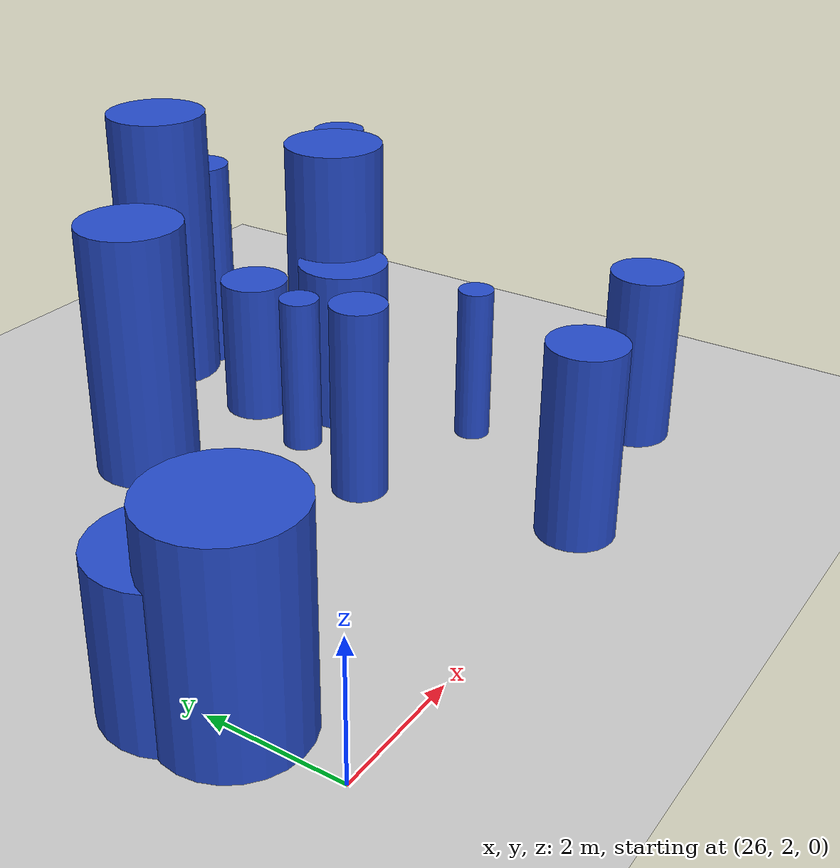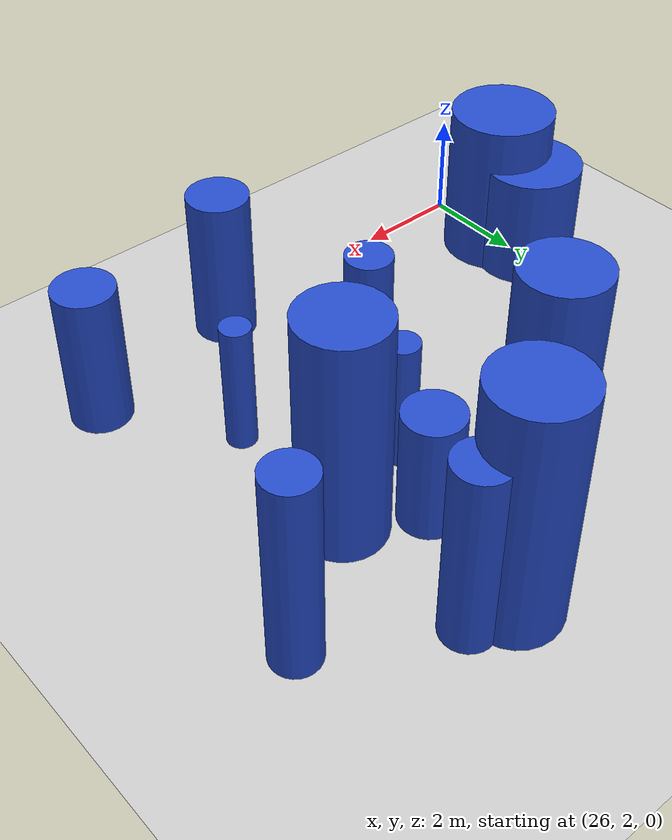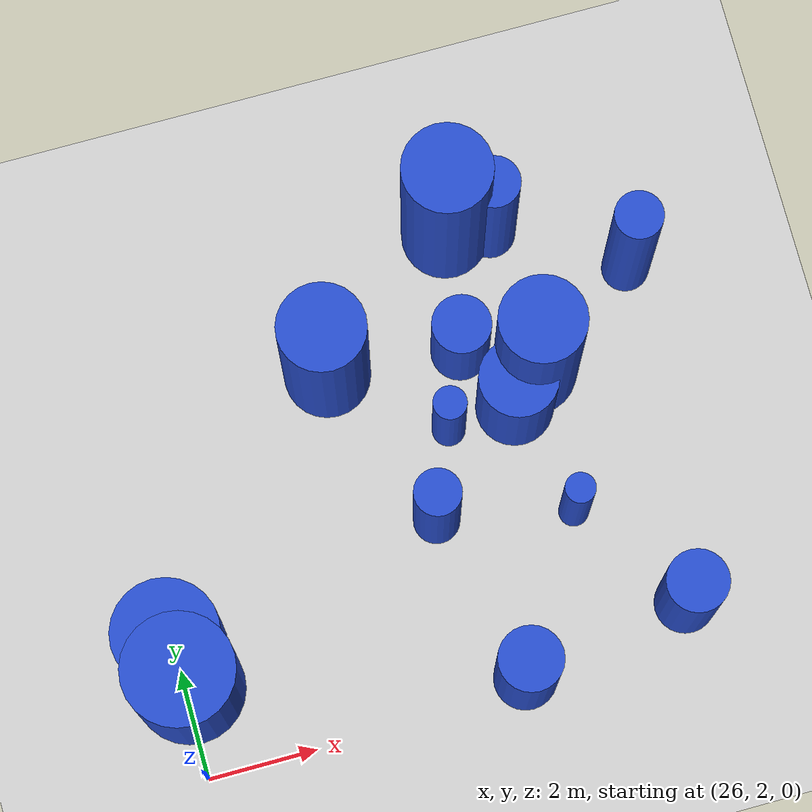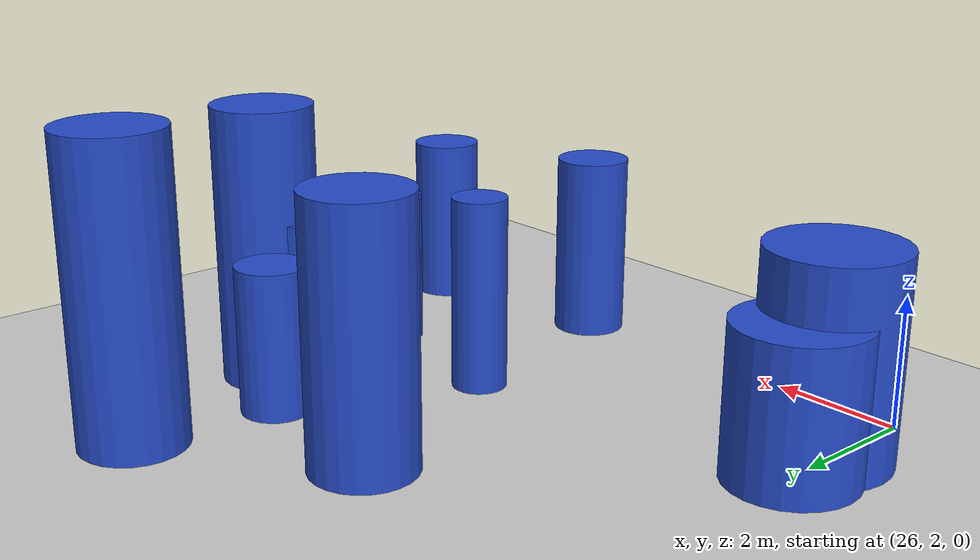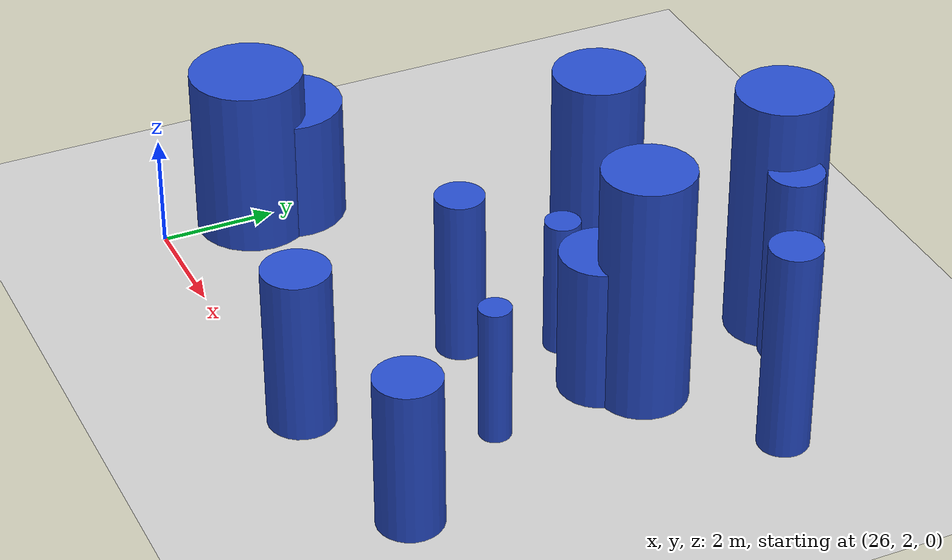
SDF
<sdf version="1.6">
 <world name="default">
  <model name="ground_plane">
   <static>1</static>
   <link name="link">
    <collision name="collision">
     <geometry><plane><normal>0 0 1</normal><size>100 100</size></plane></geometry>
     <surface><friction><ode><mu>100</mu><mu2>50</mu2></ode></friction></surface>
    </collision>
    <visual name="visual">
     <cast_shadows>0</cast_shadows>
     <geometry><plane><normal>0 0 1</normal><size>100 100</size></plane></geometry>
     <material>
      <script><uri>file://media/materials/scripts/gazebo.material</uri><name>Gazebo/Grey</name></script>
     </material>
    </visual>
   </link>
  </model>
  <model name="4">
   <static>0</static>
   <link name="link">
    <inertial>
     <mass>2</mass>
     <inertia><ixx>2.85473</ixx><ixy>0</ixy><ixz>0</ixz><iyy>2.85473</iyy><iyz>0</iyz><izz>0.620901</izz></inertia>
    </inertial>
    <collision name="collision">
     <geometry><cylinder><length>3.90714</length><radius>0.787973</radius></cylinder></geometry>
     <surface><contact><collide_without_contact>1</collide_without_contact></contact></surface>
    </collision>
    <visual name="visual">
     <geometry><cylinder><length>3.90714</length><radius>0.787973</radius></cylinder></geometry>
     <material>
      <script><uri>file://media/materials/scripts/gazebo.material</uri><name>Gazebo/Blue</name></script>
     </material>
    </visual>
    <gravity>0</gravity>
   </link>
   <pose>29.9206 8.51372 1.95357 0 -0 0</pose>
  </model>
  <model name="33">
   <static>0</static>
   <link name="link">
    <inertial>
     <mass>2</mass>
     <inertia><ixx>2.44196</ixx><ixy>0</ixy><ixz>0</ixz><iyy>2.44196</iyy><iyz>0</iyz><izz>0.187757</izz></inertia>
    </inertial>
    <collision name="collision">
     <geometry><cylinder><length>3.75347</length><radius>0.43331</radius></cylinder></geometry>
     <surface><contact><collide_without_contact>1</collide_without_contact></contact></surface>
    </collision>
    <visual name="visual">
     <geometry><cylinder><length>3.75347</length><radius>0.43331</radius></cylinder></geometry>
     <material>
      <script><uri>file://media/materials/scripts/gazebo.material</uri><name>Gazebo/Blue</name></script>
     </material>
    </visual>
    <gravity>0</gravity>
   </link>
   <pose>35.6788 9.00993 1.87673 0 -0 0</pose>
  </model>
  <model name="35">
   <static>0</static>
   <link name="link">
    <inertial>
     <mass>2</mass>
     <inertia><ixx>1.28734</ixx><ixy>0</ixy><ixz>0</ixz><iyy>1.28734</iyy><iyz>0</iyz><izz>0.926556</izz></inertia>
    </inertial>
    <collision name="collision">
     <geometry><cylinder><length>2.22359</length><radius>0.962578</radius></cylinder></geometry>
     <surface><contact><collide_without_contact>1</collide_without_contact></contact></surface>
    </collision>
    <visual name="visual">
     <geometry><cylinder><length>2.22359</length><radius>0.962578</radius></cylinder></geometry>
     <material>
      <script><uri>file://media/materials/scripts/gazebo.material</uri><name>Gazebo/Blue</name></script>
     </material>
    </visual>
    <gravity>0</gravity>
   </link>
   <pose>25.9919 4.41635 1.11179 0 -0 0</pose>
  </model>
  <model name="54">
   <static>0</static>
   <link name="link">
    <inertial>
     <mass>2</mass>
     <inertia><ixx>1.57607</ixx><ixy>0</ixy><ixz>0</ixz><iyy>1.57607</iyy><iyz>0</iyz><izz>0.179412</izz></inertia>
    </inertial>
    <collision name="collision">
     <geometry><cylinder><length>2.98633</length><radius>0.423571</radius></cylinder></geometry>
     <surface><contact><collide_without_contact>1</collide_without_contact></contact></surface>
    </collision>
    <visual name="visual">
     <geometry><cylinder><length>2.98633</length><radius>0.423571</radius></cylinder></geometry>
     <material>
      <script><uri>file://media/materials/scripts/gazebo.material</uri><name>Gazebo/Blue</name></script>
     </material>
    </visual>
    <gravity>0</gravity>
   </link>
   <pose>31.1213 5.4114 1.49317 0 -0 0</pose>
  </model>
  <model name="72">
   <static>0</static>
   <link name="link">
    <inertial>
     <mass>2</mass>
     <inertia><ixx>3.37373</ixx><ixy>0</ixy><ixz>0</ixz><iyy>3.37373</iyy><iyz>0</iyz><izz>0.599551</izz></inertia>
    </inertial>
    <collision name="collision">
     <geometry><cylinder><length>4.29461</length><radius>0.774307</radius></cylinder></geometry>
     <surface><contact><collide_without_contact>1</collide_without_contact></contact></surface>
    </collision>
    <visual name="visual">
     <geometry><cylinder><length>4.29461</length><radius>0.774307</radius></cylinder></geometry>
     <material>
      <script><uri>file://media/materials/scripts/gazebo.material</uri><name>Gazebo/Blue</name></script>
     </material>
    </visual>
    <gravity>0</gravity>
   </link>
   <pose>33.5461 7.57259 2.14731 0 -0 0</pose>
  </model>
  <model name="78">
   <static>0</static>
   <link name="link">
    <inertial>
     <mass>2</mass>
     <inertia><ixx>2.13726</ixx><ixy>0</ixy><ixz>0</ixz><iyy>2.13726</iyy><iyz>0</iyz><izz>0.219295</izz></inertia>
    </inertial>
    <collision name="collision">
     <geometry><cylinder><length>3.48793</length><radius>0.46829</radius></cylinder></geometry>
     <surface><contact><collide_without_contact>1</collide_without_contact></contact></surface>
    </collision>
    <visual name="visual">
     <geometry><cylinder><length>3.48793</length><radius>0.46829</radius></cylinder></geometry>
     <material>
      <script><uri>file://media/materials/scripts/gazebo.material</uri><name>Gazebo/Blue</name></script>
     </material>
    </visual>
    <gravity>0</gravity>
   </link>
   <pose>33.4722 10.2994 1.74397 0 -0 0</pose>
  </model>
  <model name="85">
   <static>0</static>
   <link name="link">
    <inertial>
     <mass>2</mass>
     <inertia>
      <ixx>1.04976</ixx>
      <ixy>0</ixy>
      <ixz>0</ixz>
      <iyy>1.04976</iyy>
      <iyz>0</iyz>
      <izz>0.0926647</izz>
     </inertia>
    </inertial>
    <collision name="collision">
     <geometry><cylinder><length>2.45369</length><radius>0.304409</radius></cylinder></geometry>
     <surface><contact><collide_without_contact>1</collide_without_contact></contact></surface>
    </collision>
    <visual name="visual">
     <geometry><cylinder><length>2.45369</length><radius>0.304409</radius></cylinder></geometry>
     <material>
      <script><uri>file://media/materials/scripts/gazebo.material</uri><name>Gazebo/Blue</name></script>
     </material>
    </visual>
    <gravity>0</gravity>
   </link>
   <pose>31.7715 6.96102 1.22685 0 -0 0</pose>
  </model>
  <model name="109">
   <static>0</static>
   <link name="link">
    <inertial>
     <mass>2</mass>
     <inertia><ixx>1.3731</ixx><ixy>0</ixy><ixz>0</ixz><iyy>1.3731</iyy><iyz>0</iyz><izz>0.503151</izz></inertia>
    </inertial>
    <collision name="collision">
     <geometry><cylinder><length>2.59406</length><radius>0.709332</radius></cylinder></geometry>
     <surface><contact><collide_without_contact>1</collide_without_contact></contact></surface>
    </collision>
    <visual name="visual">
     <geometry><cylinder><length>2.59406</length><radius>0.709332</radius></cylinder></geometry>
     <material>
      <script><uri>file://media/materials/scripts/gazebo.material</uri><name>Gazebo/Blue</name></script>
     </material>
    </visual>
    <gravity>0</gravity>
   </link>
   <pose>33.0318 7.0477 1.29703 0 -0 0</pose>
  </model>
  <model name="119">
   <static>0</static>
   <link name="link">
    <inertial>
     <mass>2</mass>
     <inertia><ixx>1.0452</ixx><ixy>0</ixy><ixz>0</ixz><iyy>1.0452</iyy><iyz>0</iyz><izz>0.0754433</izz></inertia>
    </inertial>
    <collision name="collision">
     <geometry><cylinder><length>2.45863</length><radius>0.274669</radius></cylinder></geometry>
     <surface><contact><collide_without_contact>1</collide_without_contact></contact></surface>
    </collision>
    <visual name="visual">
     <geometry><cylinder><length>2.45863</length><radius>0.274669</radius></cylinder></geometry>
     <material>
      <script><uri>file://media/materials/scripts/gazebo.material</uri><name>Gazebo/Blue</name></script>
     </material>
    </visual>
    <gravity>0</gravity>
   </link>
   <pose>33.5432 4.92379 1.22931 0 -0 0</pose>
  </model>
  <model name="140">
   <static>0</static>
   <link name="link">
    <inertial>
     <mass>2</mass>
     <inertia><ixx>1.40632</ixx><ixy>0</ixy><ixz>0</ixz><iyy>1.40632</iyy><iyz>0</iyz><izz>0.308108</izz></inertia>
    </inertial>
    <collision name="collision">
     <geometry><cylinder><length>2.7411</length><radius>0.555075</radius></cylinder></geometry>
     <surface><contact><collide_without_contact>1</collide_without_contact></contact></surface>
    </collision>
    <visual name="visual">
     <geometry><cylinder><length>2.7411</length><radius>0.555075</radius></cylinder></geometry>
     <material>
      <script><uri>file://media/materials/scripts/gazebo.material</uri><name>Gazebo/Blue</name></script>
     </material>
    </visual>
    <gravity>0</gravity>
   </link>
   <pose>35.0094 2.803 1.37055 0 -0 0</pose>
  </model>
  <model name="171">
   <static>0</static>
   <link name="link">
    <inertial>
     <mass>2</mass>
     <inertia><ixx>2.06842</ixx><ixy>0</ixy><ixz>0</ixz><iyy>2.06842</iyy><iyz>0</iyz><izz>0.996957</izz></inertia>
    </inertial>
    <collision name="collision">
     <geometry><cylinder><length>3.06915</length><radius>0.998477</radius></cylinder></geometry>
     <surface><contact><collide_without_contact>1</collide_without_contact></contact></surface>
    </collision>
    <visual name="visual">
     <geometry><cylinder><length>3.06915</length><radius>0.998477</radius></cylinder></geometry>
     <material>
      <script><uri>file://media/materials/scripts/gazebo.material</uri><name>Gazebo/Blue</name></script>
     </material>
    </visual>
    <gravity>0</gravity>
   </link>
   <pose>26.0832 3.64066 1.53457 0 -0 0</pose>
  </model>
  <model name="206">
   <static>0</static>
   <link name="link">
    <inertial>
     <mass>2</mass>
     <inertia>
      <ixx>0.981413</ixx>
      <ixy>0</ixy>
      <ixz>0</ixz>
      <iyy>0.981413</iyy>
      <iyz>0</iyz>
      <izz>0.28462</izz>
     </inertia>
    </inertial>
    <collision name="collision">
     <geometry><cylinder><length>2.2438</length><radius>0.533498</radius></cylinder></geometry>
     <surface><contact><collide_without_contact>1</collide_without_contact></contact></surface>
    </collision>
    <visual name="visual">
     <geometry><cylinder><length>2.2438</length><radius>0.533498</radius></cylinder></geometry>
     <material>
      <script><uri>file://media/materials/scripts/gazebo.material</uri><name>Gazebo/Blue</name></script>
     </material>
    </visual>
    <gravity>0</gravity>
   </link>
   <pose>32.3544 8.29998 1.1219 0 -0 0</pose>
  </model>
  <model name="211">
   <static>0</static>
   <link name="link">
    <inertial>
     <mass>2</mass>
     <inertia><ixx>1.59118</ixx><ixy>0</ixy><ixz>0</ixz><iyy>1.59118</iyy><iyz>0</iyz><izz>0.330992</izz></inertia>
    </inertial>
    <collision name="collision">
     <geometry><cylinder><length>2.92474</length><radius>0.575319</radius></cylinder></geometry>
     <surface><contact><collide_without_contact>1</collide_without_contact></contact></surface>
    </collision>
    <visual name="visual">
     <geometry><cylinder><length>2.92474</length><radius>0.575319</radius></cylinder></geometry>
     <material>
      <script><uri>file://media/materials/scripts/gazebo.material</uri><name>Gazebo/Blue</name></script>
     </material>
    </visual>
    <gravity>0</gravity>
   </link>
   <pose>31.8902 2.25001 1.46237 0 -0 0</pose>
  </model>
  <model name="224">
   <static>0</static>
   <link name="link">
    <inertial>
     <mass>2</mass>
     <inertia><ixx>3.74563</ixx><ixy>0</ixy><ixz>0</ixz><iyy>3.74563</iyy><iyz>0</iyz><izz>0.642376</izz></inertia>
    </inertial>
    <collision name="collision">
     <geometry><cylinder><length>4.53284</length><radius>0.801483</radius></cylinder></geometry>
     <surface><contact><collide_without_contact>1</collide_without_contact></contact></surface>
    </collision>
    <visual name="visual">
     <geometry><cylinder><length>4.53284</length><radius>0.801483</radius></cylinder></geometry>
     <material>
      <script><uri>file://media/materials/scripts/gazebo.material</uri><name>Gazebo/Blue</name></script>
     </material>
    </visual>
    <gravity>0</gravity>
   </link>
   <pose>32.6685 10.4652 2.26642 0 -0 0</pose>
  </model>
 </world>
</sdf>
